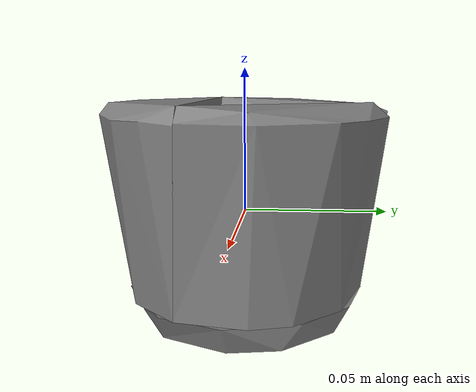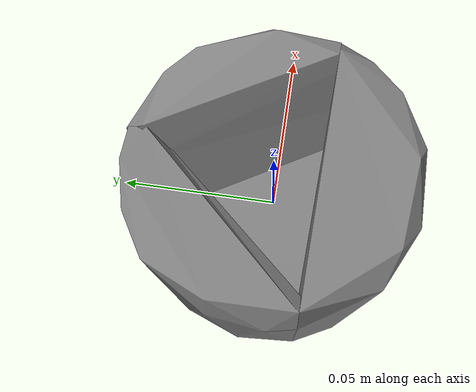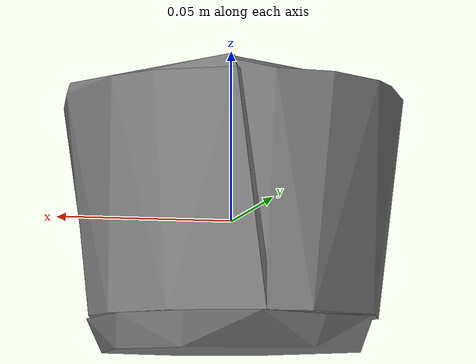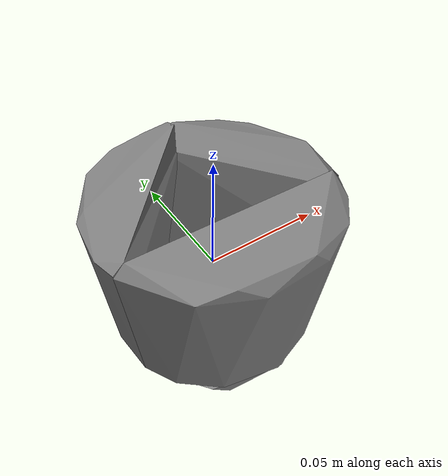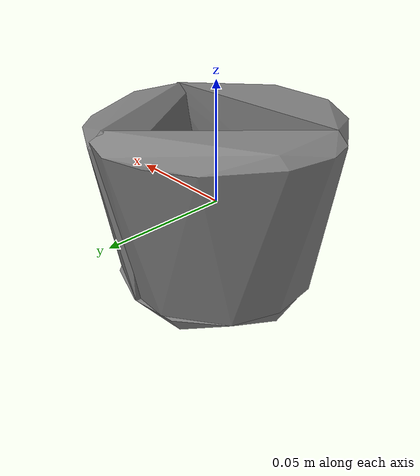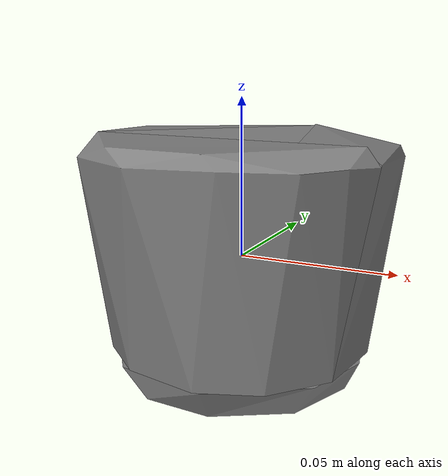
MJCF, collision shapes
<mujoco model="i_cups">
  <compiler angle="radian" />

  <asset>
    <mesh name="i_cups_visual_mesh" file="i_cups/textured.obj" />
    <mesh name="i_cups_collision_mesh_0" file="i_cups/textured_coacd_0.stl" />
    <mesh name="i_cups_collision_mesh_1" file="i_cups/textured_coacd_1.stl" />
    <mesh name="i_cups_collision_mesh_2" file="i_cups/textured_coacd_2.stl" />
    <mesh name="i_cups_collision_mesh_3" file="i_cups/textured_coacd_3.stl" />
    <texture name="i_cups_texture" type="2d" file="i_cups/texture_map.png" />
    <material name="i_cups_material" texture="i_cups_texture" />
  </asset>

  <worldbody>
    <body name="i_cups" pos="0 0 0" euler="0 0 0">
      <freejoint name="i_cups_joint" />
      <geom name="i_cups_visual_geom" type="mesh" mesh="i_cups_visual_mesh" material="i_cups_material" pos="0.010981968779668252 -0.0023034321827084393 -0.03669757456242688" euler="0 0 0" contype="0" conaffinity="0" group="0" />
      <geom name="i_cups_collision_geom_0" type="mesh" mesh="i_cups_collision_mesh_0" pos="0.010981968779668252 -0.0023034321827084393 -0.03669757456242688" euler="0 0 0" contype="1" conaffinity="1" group="3" />
      <geom name="i_cups_collision_geom_1" type="mesh" mesh="i_cups_collision_mesh_1" pos="0.010981968779668252 -0.0023034321827084393 -0.03669757456242688" euler="0 0 0" contype="1" conaffinity="1" group="3" />
      <geom name="i_cups_collision_geom_2" type="mesh" mesh="i_cups_collision_mesh_2" pos="0.010981968779668252 -0.0023034321827084393 -0.03669757456242688" euler="0 0 0" contype="1" conaffinity="1" group="3" />
      <geom name="i_cups_collision_geom_3" type="mesh" mesh="i_cups_collision_mesh_3" pos="0.010981968779668252 -0.0023034321827084393 -0.03669757456242688" euler="0 0 0" contype="1" conaffinity="1" group="3" />
      <inertial pos="0 0 0" euler="0 0 0" mass="0.035" diaginertia="0.001 0.001 0.001" />
    </body>
  </worldbody>
</mujoco>
